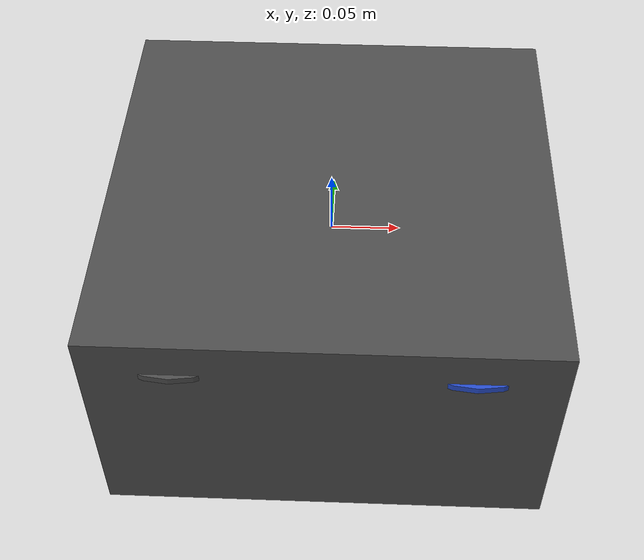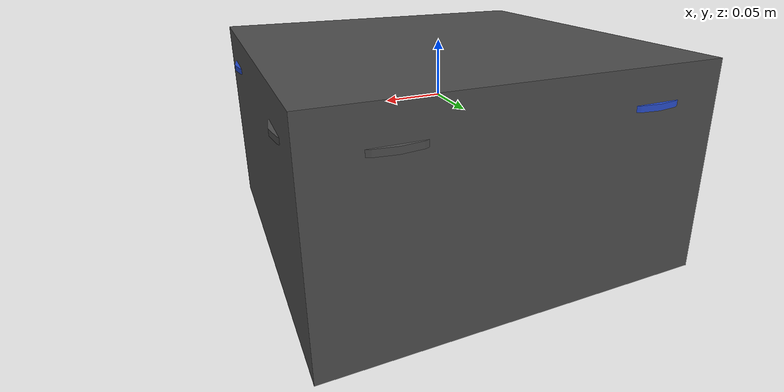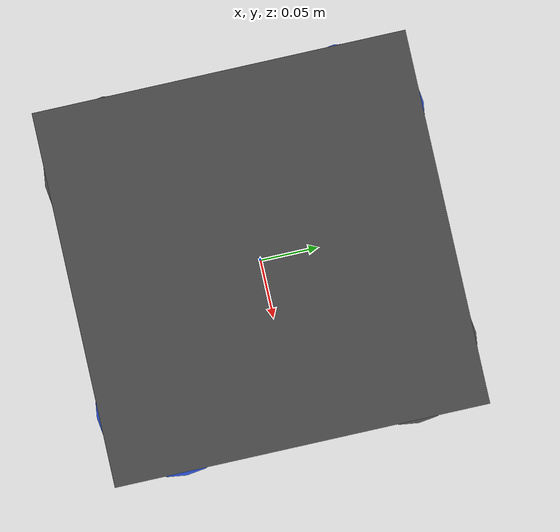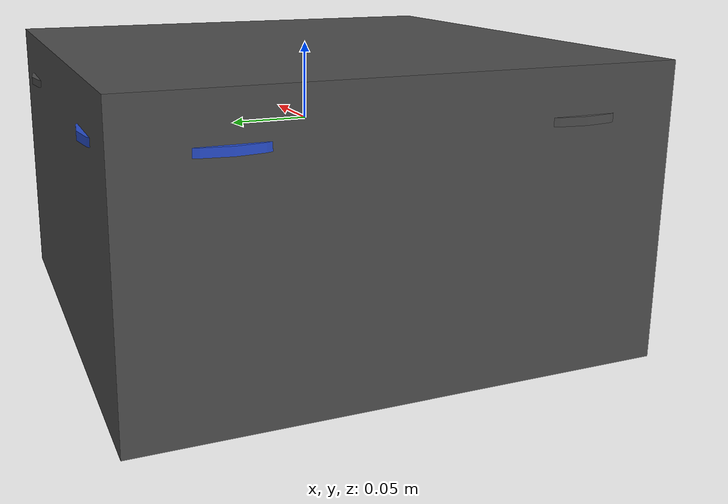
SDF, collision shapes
<sdf version='1.5'>
  <model name='quad_x_custom'>
    <!-- quad body -->
    <link name='base_link'>
      <pose>0 0 0 0 0 1.57</pose>
      <inertial>
        <pose>0 0 0 0 0 0</pose>
        <mass>0.320</mass>
        <inertia>
          <ixx>0.000785</ixx>
          <ixy>0</ixy>
          <ixz>0</ixz>
          <iyy>0.00101</iyy>
          <iyz>0</iyz>
          <izz>0.001779</izz>
        </inertia>
      </inertial>
      <collision name='base_link_inertia_collision'>
        <pose>0 0 -0.04 0 0 0</pose>
        <geometry>
          <box>
            <size>0.32 0.32 0.18</size>
          </box>
        </geometry>
        <surface>
          <contact>
            <ode>
              <min_depth>0.001</min_depth>
              <max_vel>0</max_vel>
            </ode>
          </contact>
          <friction>
            <ode/>
          </friction>
        </surface>
      </collision>
      <visual name='base_link_inertia_visual'>
        <pose>0 0 0 0 0 0</pose>
        <geometry>
          <mesh>
            <scale>1 1 1</scale>
            <uri>model://quad_x_custom/meshes/quad_x_custom.stl</uri>
          </mesh>
        </geometry>
        <material>
          <script>
            <name>Gazebo/DarkGrey</name>
            <uri>file://media/materials/scripts/gazebo.material</uri>
          </script>
        </material>
      </visual>
      <gravity>1</gravity>
      <velocity_decay/>
      <self_collide>0</self_collide>
    </link>
    <link name='imu_link'>
      <pose>0 0 0 0 0 0</pose>
      <inertial>
        <pose>0 0 0 0 0 0</pose>
        <mass>0.015</mass>
        <inertia>
          <ixx>1e-05</ixx>
          <ixy>0</ixy>
          <ixz>0</ixz>
          <iyy>1e-05</iyy>
          <iyz>0</iyz>
          <izz>1e-05</izz>
        </inertia>
      </inertial>
    </link>
    <joint name='imu_joint' type='revolute'>
      <child>imu_link</child>
      <parent>base_link</parent>
      <axis>
        <xyz>1 0 0</xyz>
        <limit>
          <lower>0</lower>
          <upper>0</upper>
          <effort>0</effort>
          <velocity>0</velocity>
        </limit>
        <dynamics>
          <spring_reference>0</spring_reference>
          <spring_stiffness>0</spring_stiffness>
        </dynamics>
        <use_parent_model_frame>1</use_parent_model_frame>
      </axis>
    </joint>
    <link name='battery'>
      <inertial>
        <mass>.360</mass>
        <inertia>
          <ixx>0.0002041</ixx>
          <ixy>0</ixy>
          <ixz>0</ixz>
          <iyy>0.0009354</iyy>
          <iyz>0</iyz>
          <izz>0.0009354</izz>
        </inertia>
        <pose>0 -0 0 0 0 0</pose>
      </inertial>
      <pose>0 -0 -0.0275 0 -0 0</pose>
      <gravity>1</gravity>
      <self_collide>0</self_collide>
      <kinematic>0</kinematic>
      <enable_wind>0</enable_wind>
      <visual name='visual'>
        <pose>0 -0 0 0 -0 0</pose>
        <geometry>
          <box>
            <size>0.1 0.035 0.035</size>
          </box>
        </geometry>
        <material>
          <lighting>1</lighting>
          <script>
            <uri>file://media/materials/scripts/gazebo.material</uri>
            <name>Gazebo/Blue</name>
          </script>
          <shader type='pixel'>
            <normal_map></normal_map>
          </shader>
          <ambient>0.3 0.3 0.3 1</ambient>
          <diffuse>0.7 0.7 0.7 1</diffuse>
          <specular>0.01 0.01 0.01 1</specular>
          <emissive>0 0 0 1</emissive>
        </material>
        <transparency>0</transparency>
        <cast_shadows>1</cast_shadows>
      </visual>
      <collision name='collision'>
        <laser_retro>0</laser_retro>
        <max_contacts>10</max_contacts>
        <pose>0 -0 0 0 -0 0</pose>
        <geometry>
          <box>
            <size>0.1 0.035 0.035</size>
          </box>
        </geometry>
      </collision>
    </link>
    <joint name='body_battery_joint' type='fixed'>
      <parent>base_link</parent>
      <child>battery</child>
      <pose>0 0 -0.0275 0 -0 0</pose>
    </joint>
    <link name='rotor_0'>
      <pose>0.1 -0.1 0.02 0 0 0</pose>
      <inertial>
        <pose>0 0 0 0 0 0</pose>
        <mass>0.005</mass>
        <inertia>
          <ixx>9.75e-07</ixx>
          <ixy>0</ixy>
          <ixz>0</ixz>
          <iyy>0.000273104</iyy>
          <iyz>0</iyz>
          <izz>0.000274004</izz>
        </inertia>
      </inertial>
      <collision name='rotor_0_collision'>
        <pose>0 0 0 0 0 0</pose>
        <geometry>
          <cylinder>
            <length>0.005</length>
            <radius>0.0635</radius>
          </cylinder>
        </geometry>
        <surface>
          <contact>
            <ode/>
          </contact>
          <friction>
            <ode/>
          </friction>
        </surface>
      </collision>
      <visual name='rotor_0_visual'>
        <pose>0 0 0 0 0 0</pose>
        <geometry>
          <mesh>
            <scale>1 1 1</scale>
            <uri>model://quad_x_custom/meshes/prop_ccw.stl</uri>
          </mesh>
        </geometry>
        <material>
          <script>
            <name>Gazebo/Blue</name>
            <uri>file://media/materials/scripts/gazebo.material</uri>
          </script>
        </material>
      </visual>
      <gravity>1</gravity>
      <velocity_decay/>
      <self_collide>0</self_collide>
    </link>
    <joint name='rotor_0_joint' type='revolute'>
      <child>rotor_0</child>
      <parent>base_link</parent>
      <axis>
        <xyz>0 0 1</xyz>
        <limit>
          <lower>-1e+16</lower>
          <upper>1e+16</upper>
        </limit>
        <dynamics>
          <spring_reference>0</spring_reference>
          <spring_stiffness>0</spring_stiffness>
        </dynamics>
        <use_parent_model_frame>1</use_parent_model_frame>
      </axis>
    </joint>
    <link name='rotor_1'>
      <pose>-0.1 0.1 0.02 0 0 0</pose>
      <inertial>
        <pose>0 0 0 0 0 0</pose>
        <mass>0.005</mass>
        <inertia>
          <ixx>9.75e-07</ixx>
          <ixy>0</ixy>
          <ixz>0</ixz>
          <iyy>0.000273104</iyy>
          <iyz>0</iyz>
          <izz>0.000274004</izz>
        </inertia>
      </inertial>
      <collision name='rotor_1_collision'>
        <pose>0 0 0 0 0 0</pose>
        <geometry>
          <cylinder>
            <length>0.005</length>
            <radius>0.0635</radius>
          </cylinder>
        </geometry>
        <surface>
          <contact>
            <ode/>
          </contact>
          <friction>
            <ode/>
          </friction>
        </surface>
      </collision>
      <visual name='rotor_1_visual'>
        <pose>0 0 0 0 0 0</pose>
        <geometry>
          <mesh>
            <scale>1 1 1</scale>
            <uri>model://quad_x_custom/meshes/prop_ccw.stl</uri>
          </mesh>
        </geometry>
        <material>
          <script>
            <name>Gazebo/Blue</name>
            <uri>file://media/materials/scripts/gazebo.material</uri>
          </script>
        </material>
      </visual>
      <gravity>1</gravity>
      <velocity_decay/>
      <self_collide>0</self_collide>
    </link>
    <joint name='rotor_1_joint' type='revolute'>
      <child>rotor_1</child>
      <parent>base_link</parent>
      <axis>
        <xyz>0 0 1</xyz>
        <limit>
          <lower>-1e+16</lower>
          <upper>1e+16</upper>
        </limit>
        <dynamics>
          <spring_reference>0</spring_reference>
          <spring_stiffness>0</spring_stiffness>
        </dynamics>
        <use_parent_model_frame>1</use_parent_model_frame>
      </axis>
    </joint>
    <link name='rotor_2'>
      <pose>0.1 0.1 0.02 0 0 0</pose>
      <inertial>
        <pose>0 0 0 0 0 0</pose>
        <mass>0.005</mass>
        <inertia>
          <ixx>9.75e-07</ixx>
          <ixy>0</ixy>
          <ixz>0</ixz>
          <iyy>0.000273104</iyy>
          <iyz>0</iyz>
          <izz>0.000274004</izz>
        </inertia>
      </inertial>
      <collision name='rotor_2_collision'>
        <pose>0 0 0 0 0 0</pose>
        <geometry>
          <cylinder>
            <length>0.005</length>
            <radius>0.0635</radius>
          </cylinder>
        </geometry>
        <surface>
          <contact>
            <ode/>
          </contact>
          <friction>
            <ode/>
          </friction>
        </surface>
      </collision>
      <visual name='rotor_2_visual'>
        <pose>0 0 0 0 0 0</pose>
        <geometry>
          <mesh>
            <scale>1 1 1</scale>
            <uri>model://quad_x_custom/meshes/prop_cw.stl</uri>
          </mesh>
        </geometry>
        <material>
          <script>
            <name>Gazebo/DarkGrey</name>
            <uri>file://media/materials/scripts/gazebo.material</uri>
          </script>
        </material>
      </visual>
      <gravity>1</gravity>
      <velocity_decay/>
      <self_collide>0</self_collide>
    </link>
    <joint name='rotor_2_joint' type='revolute'>
      <child>rotor_2</child>
      <parent>base_link</parent>
      <axis>
        <xyz>0 0 1</xyz>
        <limit>
          <lower>-1e+16</lower>
          <upper>1e+16</upper>
        </limit>
        <dynamics>
          <spring_reference>0</spring_reference>
          <spring_stiffness>0</spring_stiffness>
        </dynamics>
        <use_parent_model_frame>1</use_parent_model_frame>
      </axis>
    </joint>
    <link name='rotor_3'>
      <pose>-0.1 -0.1 0.02 0 0 0</pose>
      <inertial>
        <pose>0 0 0 0 0 0</pose>
        <mass>0.005</mass>
        <inertia>
          <ixx>9.75e-07</ixx>
          <ixy>0</ixy>
          <ixz>0</ixz>
          <iyy>0.000273104</iyy>
          <iyz>0</iyz>
          <izz>0.000274004</izz>
        </inertia>
      </inertial>
      <collision name='rotor_3_collision'>
        <pose>0 0 0 0 0 0</pose>
        <geometry>
          <cylinder>
            <length>0.005</length>
            <radius>0.0635</radius>
          </cylinder>
        </geometry>
        <surface>
          <contact>
            <ode/>
          </contact>
          <friction>
            <ode/>
          </friction>
        </surface>
      </collision>
      <visual name='rotor_3_visual'>
        <pose>0 0 0 0 0 0</pose>
        <geometry>
          <mesh>
            <scale>1 1 1</scale>
            <uri>model://quad_x_custom/meshes/prop_cw.stl</uri>
          </mesh>
        </geometry>
        <material>
          <script>
            <name>Gazebo/DarkGrey</name>
            <uri>file://media/materials/scripts/gazebo.material</uri>
          </script>
        </material>
      </visual>
      <gravity>1</gravity>
      <velocity_decay/>
      <self_collide>0</self_collide>
    </link>
    <joint name='rotor_3_joint' type='revolute'>
      <child>rotor_3</child>
      <parent>base_link</parent>
      <axis>
        <xyz>0 0 1</xyz>
        <limit>
          <lower>-1e+16</lower>
          <upper>1e+16</upper>
        </limit>
        <dynamics>
          <spring_reference>0</spring_reference>
          <spring_stiffness>0</spring_stiffness>
        </dynamics>
        <use_parent_model_frame>1</use_parent_model_frame>
      </axis>
    </joint>
    <plugin name='rosbag' filename='libgazebo_multirotor_base_plugin.so'>
      <robotNamespace></robotNamespace>
      <linkName>base_link</linkName>
      <rotorVelocitySlowdownSim>10</rotorVelocitySlowdownSim>
    </plugin>
    <plugin name='front_right_motor_model' filename='libgazebo_motor_model.so'>
      <robotNamespace></robotNamespace>
      <jointName>rotor_0_joint</jointName>
      <linkName>rotor_0</linkName>
      <turningDirection>ccw</turningDirection>
      <timeConstantUp>0.0125</timeConstantUp>
      <timeConstantDown>0.025</timeConstantDown>
      <maxRotVelocity>1500</maxRotVelocity>
      <motorConstant>8.54858e-06</motorConstant>
      <momentConstant>0.06</momentConstant>
      <commandSubTopic>/gazebo/command/motor_speed</commandSubTopic>
      <motorNumber>0</motorNumber>
      <rotorDragCoefficient>0.000806428</rotorDragCoefficient>
      <rollingMomentCoefficient>1e-06</rollingMomentCoefficient>
      <motorSpeedPubTopic>/motor_speed/0</motorSpeedPubTopic>
      <rotorVelocitySlowdownSim>10</rotorVelocitySlowdownSim>
    </plugin>
    <plugin name='back_left_motor_model' filename='libgazebo_motor_model.so'>
      <robotNamespace></robotNamespace>
      <jointName>rotor_1_joint</jointName>
      <linkName>rotor_1</linkName>
      <turningDirection>ccw</turningDirection>
      <timeConstantUp>0.0125</timeConstantUp>
      <timeConstantDown>0.025</timeConstantDown>
      <maxRotVelocity>1500</maxRotVelocity>
      <motorConstant>8.54858e-06</motorConstant>
      <momentConstant>0.06</momentConstant>
      <commandSubTopic>/gazebo/command/motor_speed</commandSubTopic>
      <motorNumber>1</motorNumber>
      <rotorDragCoefficient>0.000806428</rotorDragCoefficient>
      <rollingMomentCoefficient>1e-06</rollingMomentCoefficient>
      <motorSpeedPubTopic>/motor_speed/1</motorSpeedPubTopic>
      <rotorVelocitySlowdownSim>10</rotorVelocitySlowdownSim>
    </plugin>
    <plugin name='front_left_motor_model' filename='libgazebo_motor_model.so'>
      <robotNamespace></robotNamespace>
      <jointName>rotor_2_joint</jointName>
      <linkName>rotor_2</linkName>
      <turningDirection>cw</turningDirection>
      <timeConstantUp>0.0125</timeConstantUp>
      <timeConstantDown>0.025</timeConstantDown>
      <maxRotVelocity>1500</maxRotVelocity>
      <motorConstant>8.54858e-06</motorConstant>
      <momentConstant>0.06</momentConstant>
      <commandSubTopic>/gazebo/command/motor_speed</commandSubTopic>
      <motorNumber>2</motorNumber>
      <rotorDragCoefficient>0.000806428</rotorDragCoefficient>
      <rollingMomentCoefficient>1e-06</rollingMomentCoefficient>
      <motorSpeedPubTopic>/motor_speed/2</motorSpeedPubTopic>
      <rotorVelocitySlowdownSim>10</rotorVelocitySlowdownSim>
    </plugin>
    <plugin name='back_right_motor_model' filename='libgazebo_motor_model.so'>
      <robotNamespace></robotNamespace>
      <jointName>rotor_3_joint</jointName>
      <linkName>rotor_3</linkName>
      <turningDirection>cw</turningDirection>
      <timeConstantUp>0.0125</timeConstantUp>
      <timeConstantDown>0.025</timeConstantDown>
      <maxRotVelocity>1500</maxRotVelocity>
      <motorConstant>8.54858e-06</motorConstant>
      <momentConstant>0.06</momentConstant>
      <commandSubTopic>/gazebo/command/motor_speed</commandSubTopic>
      <motorNumber>3</motorNumber>
      <rotorDragCoefficient>0.000806428</rotorDragCoefficient>
      <rollingMomentCoefficient>1e-06</rollingMomentCoefficient>
      <motorSpeedPubTopic>/motor_speed/3</motorSpeedPubTopic>
      <rotorVelocitySlowdownSim>10</rotorVelocitySlowdownSim>
    </plugin>
    <plugin name="gps_plugin" filename="libgazebo_gps_plugin.so">
        <robotNamespace></robotNamespace>
        <gpsNoise>true</gpsNoise>
    </plugin>
        <plugin name='mavlink_interface' filename='libgazebo_mavlink_interface.so'>
      <robotNamespace/>
      <imuSubTopic>/imu</imuSubTopic>
      <gpsSubTopic>/gps</gpsSubTopic>
      <mavlink_addr>INADDR_ANY</mavlink_addr>
      <mavlink_udp_port>14560</mavlink_udp_port>
      <serialEnabled>false</serialEnabled>
      <serialDevice>/dev/ttyACM0</serialDevice>
      <baudRate>921600</baudRate>
      <qgc_addr>INADDR_ANY</qgc_addr>
      <qgc_udp_port>14550</qgc_udp_port>
      <hil_mode>false</hil_mode>
      <hil_state_level>false</hil_state_level>
      <motorSpeedCommandPubTopic>/gazebo/command/motor_speed</motorSpeedCommandPubTopic>
      <control_channels>
        <channel name='rotor1'>
          <input_index>0</input_index>
          <input_offset>0</input_offset>
          <input_scaling>1200</input_scaling>
          <zero_position_disarmed>0</zero_position_disarmed>
          <zero_position_armed>100</zero_position_armed>
          <joint_control_type>velocity</joint_control_type>
        </channel>
        <channel name='rotor2'>
          <input_index>1</input_index>
          <input_offset>0</input_offset>
          <input_scaling>1200</input_scaling>
          <zero_position_disarmed>0</zero_position_disarmed>
          <zero_position_armed>100</zero_position_armed>
          <joint_control_type>velocity</joint_control_type>
        </channel>
        <channel name='rotor3'>
          <input_index>2</input_index>
          <input_offset>0</input_offset>
          <input_scaling>1200</input_scaling>
          <zero_position_disarmed>0</zero_position_disarmed>
          <zero_position_armed>100</zero_position_armed>
          <joint_control_type>velocity</joint_control_type>
        </channel>
        <channel name='rotor4'>
          <input_index>3</input_index>
          <input_offset>0</input_offset>
          <input_scaling>1200</input_scaling>
          <zero_position_disarmed>0</zero_position_disarmed>
          <zero_position_armed>100</zero_position_armed>
          <joint_control_type>velocity</joint_control_type>
        </channel>
      </control_channels>
    </plugin>
    <static>0</static>
    <plugin name='gazebo_imu_plugin' filename='libgazebo_imu_plugin.so'>
      <robotNamespace></robotNamespace>
      <linkName>imu_link</linkName>
      <imuTopic>/imu</imuTopic>
      <gyroscopeNoiseDensity>0.0003394</gyroscopeNoiseDensity>
      <gyroscopeRandomWalk>3.8785e-05</gyroscopeRandomWalk>
      <gyroscopeBiasCorrelationTime>1000.0</gyroscopeBiasCorrelationTime>
      <gyroscopeTurnOnBiasSigma>0.0087</gyroscopeTurnOnBiasSigma>
      <accelerometerNoiseDensity>0.004</accelerometerNoiseDensity>
      <accelerometerRandomWalk>0.006</accelerometerRandomWalk>
      <accelerometerBiasCorrelationTime>300.0</accelerometerBiasCorrelationTime>
      <accelerometerTurnOnBiasSigma>0.196</accelerometerTurnOnBiasSigma>
    </plugin>
  </model>
</sdf>
